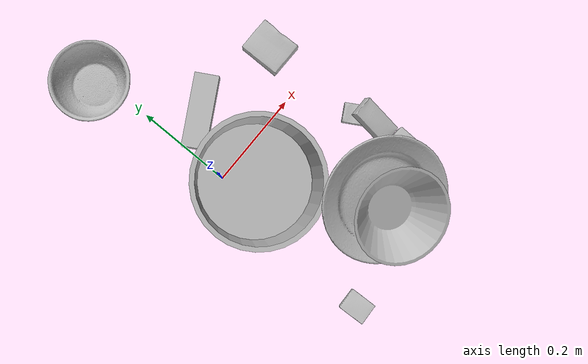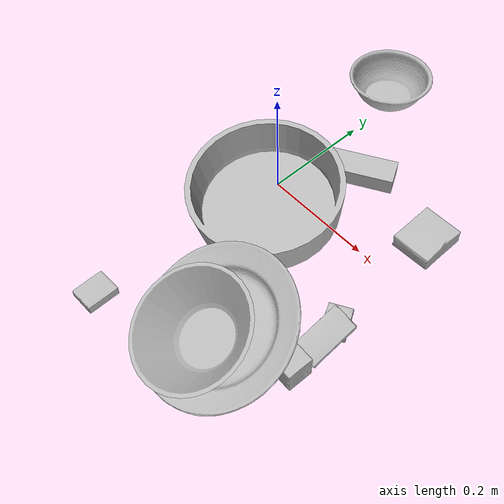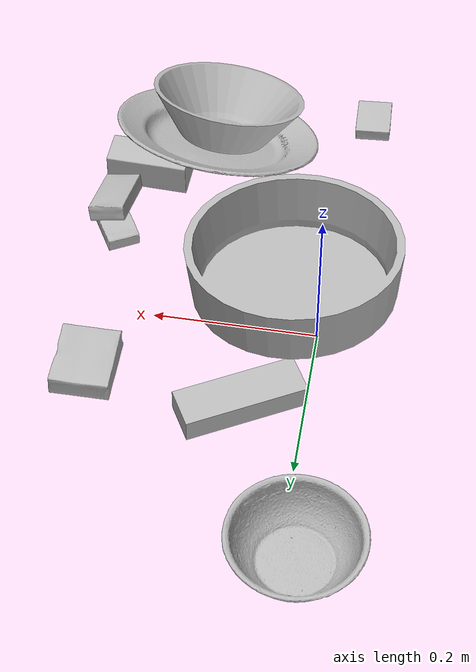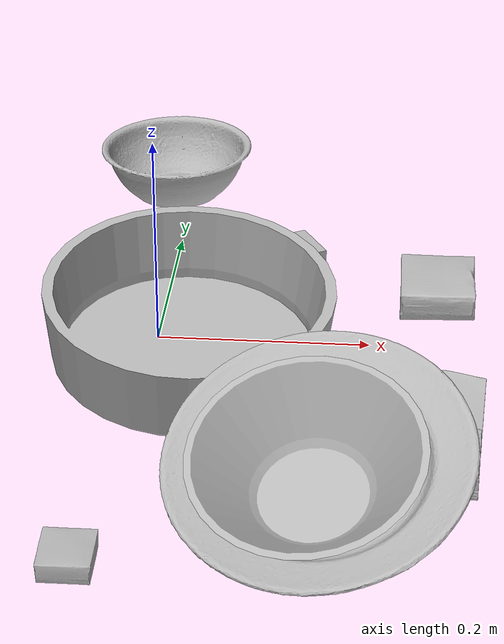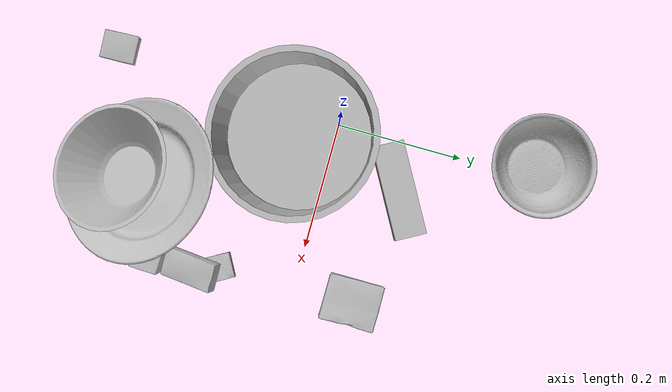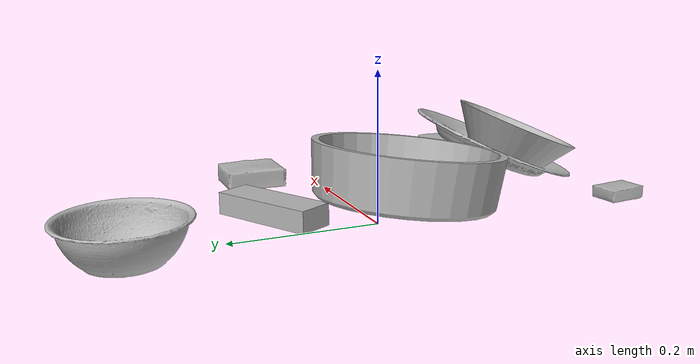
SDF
<sdf version="1.4">
  <world name="default">
    <light name="light1" type="point">
      <pose>0 0 1 0 0 0</pose>
      <diffuse>3 3 3 1</diffuse>
      <specular>3 3 3 1</specular>
    </light>
    <light name="light2" type="point">
      <pose>0 0.5 2 0 0 0</pose>
      <diffuse>1 1 1 1</diffuse>
      <specular>1 1 1 1</specular>
    </light>
    <light name="light3" type="point">
      <pose>0 0.5 2 0 0 0</pose>
      <diffuse>3 3 3 1</diffuse>
      <specular>3 3 3 1</specular>
    </light>
    <scene>
      <ambient>0.7 0.7 0.7</ambient>
    </scene>
    <model name="box1">
      <link name="link_box1">
        <collision name="default">
          <geometry>
            <mesh>
              <uri>model://jenga/collision_meshes/collision.obj</uri>
              <scale>1.0 1.0 1.0</scale>
            </mesh>
          </geometry>
          <surface>
            <friction>
              <ode>
                <mu>0.5</mu>
                <mu2>0.5</mu2>
              </ode>
            </friction>
          <contact>
        <ode>
            <max_vel>0</max_vel>
            <min_depth>0.0001</min_depth>
            <kp>1e8</kp>
        </ode>
    </contact></surface>
        </collision>
        <visual name="default">
          <geometry>
            <mesh>
              <uri>model://jenga/visual_meshes/visual.dae</uri>
              <scale>1.0 1.0 1.0</scale>
            </mesh>
          </geometry>
        </visual>
        <inertial>
          <mass>0.22956150770187378</mass>
          <pose>-2.502855807051674e-07 -0.00010250010382151231 -4.0923401684267446e-05 0.0 -7.34215461761844e-07 0.0</pose>
          <inertia>
            <ixx>6.3525236e-05</ixx>
            <iyy>0.00043044525</iyy>
            <izz>0.0004595369</izz>
            <ixy>0</ixy>
            <ixz>0</ixz>
            <iyz>0</iyz>
          </inertia>
        </inertial>
      </link>
      <pose>0.0745820701122284 0.1177791878581047 0.015005835331976414 -0.0001307654430667864 1.6838732399532224e-05 -2.630546622650337</pose>
    </model>
    <model name="box11">
      <link name="link_box11">
        <collision name="default">
          <geometry>
            <mesh>
              <uri>model://gelatin_box/collision_meshes/collision.obj</uri>
              <scale>1.0 1.0 1.0</scale>
            </mesh>
          </geometry>
          <surface>
            <friction>
              <ode>
                <mu>0.5</mu>
                <mu2>0.5</mu2>
              </ode>
            </friction>
          <contact>
        <ode>
            <max_vel>0</max_vel>
            <min_depth>0.0001</min_depth>
            <kp>1e8</kp>
        </ode>
    </contact></surface>
        </collision>
        <visual name="default">
          <geometry>
            <mesh>
              <uri>model://gelatin_box/visual_meshes/visual.dae</uri>
              <scale>1.0 1.0 1.0</scale>
            </mesh>
          </geometry>
        </visual>
        <inertial>
          <mass>0.23979201912879944</mass>
          <pose>0.00043196187471039593 0.00011156872642459348 -0.0003640321083366871 -0.0010503717361155602 -0.00475581776093882 0.016440559470502904</pose>
          <inertia>
            <ixx>0.00016927361</ixx>
            <iyy>0.000120911245</iyy>
            <izz>0.00025767216</izz>
            <ixy>0</ixy>
            <ixz>0</ixz>
            <iyz>0</iyz>
          </inertia>
        </inertial>
      </link>
      <pose>0.2631273567676544 0.09323978424072266 0.015168316662311554 0.005597430642388966 -0.007304511629027091 -0.007219576423939017</pose>
    </model>
    <model name="box2">
      <link name="link_box2">
        <collision name="default">
          <geometry>
            <mesh>
              <uri>model://wood_block/collision_meshes/collision.obj</uri>
              <scale>0.5 0.5 0.5</scale>
            </mesh>
          </geometry>
          <surface>
            <friction>
              <ode>
                <mu>0.5</mu>
                <mu2>0.5</mu2>
              </ode>
            </friction>
          <contact>
        <ode>
            <max_vel>0</max_vel>
            <min_depth>0.0001</min_depth>
            <kp>1e8</kp>
        </ode>
    </contact></surface>
        </collision>
        <visual name="default">
          <geometry>
            <mesh>
              <uri>model://wood_block/visual_meshes/visual.dae</uri>
              <scale>0.5 0.5 0.5</scale>
            </mesh>
          </geometry>
        </visual>
        <inertial>
          <mass>0.1620619148015976</mass>
          <pose>-2.9066577553749084e-06 -0.000285404734313488 0.00013204291462898254 -0.05221116986778199 -0.0051926948812571205 -0.006861377876233232</pose>
          <inertia>
            <ixx>5.421584e-05</ixx>
            <iyy>0.00017126785</iyy>
            <izz>0.00017062723</izz>
            <ixy>0</ixy>
            <ixz>0</ixz>
            <iyz>0</iyz>
          </inertia>
        </inertial>
      </link>
      <pose>0.24795469641685486 -0.22837552428245544 0.02262939140200615 -0.005236190468380212 0.005723901320035021 -0.04126985712675197</pose>
    </model>
    <model name="box21">
      <link name="link_box21">
        <collision name="default">
          <geometry>
            <mesh>
              <uri>model://cracker_box/collision_meshes/collision.obj</uri>
              <scale>0.25 0.25 0.25</scale>
            </mesh>
          </geometry>
          <surface>
            <friction>
              <ode>
                <mu>0.5</mu>
                <mu2>0.5</mu2>
              </ode>
            </friction>
          <contact>
        <ode>
            <max_vel>0</max_vel>
            <min_depth>0.0001</min_depth>
            <kp>1e8</kp>
        </ode>
    </contact></surface>
        </collision>
        <visual name="default">
          <geometry>
            <mesh>
              <uri>model://cracker_box/visual_meshes/visual.dae</uri>
              <scale>0.25 0.25 0.25</scale>
            </mesh>
          </geometry>
        </visual>
        <inertial>
          <mass>0.053346797823905945</mass>
          <pose>0.0002366035187151283 6.358561950037256e-05 -0.00042573839891701937 -0.0003162075101960104 -0.011106487737771283 0.002546795233856971</pose>
          <inertia>
            <ixx>8.4806525e-06</ixx>
            <iyy>1.40032225e-05</iyy>
            <izz>1.9983887e-05</izz>
            <ixy>0</ixy>
            <ixz>0</ixz>
            <iyz>0</iyz>
          </inertia>
        </inertial>
      </link>
      <pose>0.2696530818939209 -0.12571023404598236 0.009140278212726116 0.0002788081734076631 -2.5791427728062852e-05 -1.0580006716233954</pose>
    </model>
    <model name="box3">
      <link name="link_box3">
        <collision name="default">
          <geometry>
            <mesh>
              <uri>model://pudding_box/collision_meshes/collision.obj</uri>
              <scale>0.5 0.5 0.5</scale>
            </mesh>
          </geometry>
          <surface>
            <friction>
              <ode>
                <mu>0.5</mu>
                <mu2>0.5</mu2>
              </ode>
            </friction>
          <contact>
        <ode>
            <max_vel>0</max_vel>
            <min_depth>0.0001</min_depth>
            <kp>1e8</kp>
        </ode>
    </contact></surface>
        </collision>
        <visual name="default">
          <geometry>
            <mesh>
              <uri>model://pudding_box/visual_meshes/visual.dae</uri>
              <scale>0.5 0.5 0.5</scale>
            </mesh>
          </geometry>
        </visual>
        <inertial>
          <mass>0.03981568291783333</mass>
          <pose>0.00024474109522998333 0.00040339428232982755 -0.00025944141088984907 0.005213101343760943 -0.0066037982384193495 0.020079821436446477</pose>
          <inertia>
            <ixx>1.1252395e-05</ixx>
            <iyy>7.5706907e-06</iyy>
            <izz>1.6617103e-05</izz>
            <ixy>0</ixy>
            <ixz>0</ixz>
            <iyz>0</iyz>
          </inertia>
        </inertial>
      </link>
      <pose>-0.025636592879891396 -0.36579930782318115 0.00986290443688631 0.02234853896024439 -0.01139170844256814 -3.1027676117671423</pose>
    </model>
    <model name="box31">
      <link name="link_box31">
        <collision name="default">
          <geometry>
            <mesh>
              <uri>model://sugar_box/collision_meshes/collision.obj</uri>
              <scale>0.5 0.5 0.5</scale>
            </mesh>
          </geometry>
          <surface>
            <friction>
              <ode>
                <mu>0.5</mu>
                <mu2>0.5</mu2>
              </ode>
            </friction>
          <contact>
        <ode>
            <max_vel>0</max_vel>
            <min_depth>0.0001</min_depth>
            <kp>1e8</kp>
        </ode>
    </contact></surface>
        </collision>
        <visual name="default">
          <geometry>
            <mesh>
              <uri>model://sugar_box/visual_meshes/visual.dae</uri>
              <scale>0.5 0.5 0.5</scale>
            </mesh>
          </geometry>
        </visual>
        <inertial>
          <mass>0.09878891706466675</mass>
          <pose>0.0005171863595023751 1.924554817378521e-05 -0.00018182402709499002 -0.0004046259508743568 0.001050663638168667 0.0026153790219137513</pose>
          <inertia>
            <ixx>2.0577656e-05</ixx>
            <iyy>6.651122e-05</iyy>
            <izz>7.9621874e-05</izz>
            <ixy>0</ixy>
            <ixz>0</ixz>
            <iyz>0</iyz>
          </inertia>
        </inertial>
      </link>
      <pose>0.27958086133003235 -0.16229769587516785 0.02519962005317211 -0.19705632067760384 0.3053687476919816 -1.635003870512579</pose>
    </model>
    <model name="plate1">
      <link name="link_plate1">
        <collision name="default">
          <geometry>
            <mesh>
              <uri>model://pan_tefal/collision_meshes/collision.obj</uri>
              <scale>1.0 1.0 1.0</scale>
            </mesh>
          </geometry>
          <surface>
            <friction>
              <ode>
                <mu>0.5</mu>
                <mu2>0.5</mu2>
              </ode>
            </friction>
          <contact>
        <ode>
            <max_vel>0</max_vel>
            <min_depth>0.0001</min_depth>
            <kp>1e8</kp>
        </ode>
    </contact></surface>
        </collision>
        <visual name="default">
          <geometry>
            <mesh>
              <uri>model://pan_tefal/visual_meshes/visual.dae</uri>
              <scale>1.0 1.0 1.0</scale>
            </mesh>
          </geometry>
        </visual>
        <inertial>
          <mass>1.1273940801620483</mass>
          <pose>-0.00018001534044742584 3.279306838521734e-05 -0.00851493701338768 0.0008190361817388816 -0.00033014848142065665 -0.3318599615030245</pose>
          <inertia>
            <ixx>0.007782347</ixx>
            <iyy>0.00783252</iyy>
            <izz>0.014325799</izz>
            <ixy>0</ixy>
            <ixz>0</ixz>
            <iyz>0</iyz>
          </inertia>
        </inertial>
      </link>
      <pose>0.03720034658908844 -0.059282369911670685 0.052259862422943115 0.07961664132003833 -0.104792813256596 1.255352360992927</pose>
    </model>
    <model name="bowl1">
      <link name="link_bowl1">
        <collision name="default">
          <geometry>
            <mesh>
              <uri>model://bowl_a/collision_meshes/collision.obj</uri>
              <scale>1.0 1.0 1.0</scale>
            </mesh>
          </geometry>
          <surface>
            <friction>
              <ode>
                <mu>0.5</mu>
                <mu2>0.5</mu2>
              </ode>
            </friction>
          <contact>
        <ode>
            <max_vel>0</max_vel>
            <min_depth>0.0001</min_depth>
            <kp>1e8</kp>
        </ode>
    </contact></surface>
        </collision>
        <visual name="default">
          <geometry>
            <mesh>
              <uri>model://bowl_a/visual_meshes/visual.dae</uri>
              <scale>1.0 1.0 1.0</scale>
            </mesh>
          </geometry>
        </visual>
        <inertial>
          <mass>0.3873887062072754</mass>
          <pose>0.00027867493918165565 4.731054286821745e-05 -0.0013765293406322598 -0.0009805472575270138 -0.0010938146264646796 -0.19122952428204854</pose>
          <inertia>
            <ixx>0.0011029133</ixx>
            <iyy>0.0011096848</iyy>
            <izz>0.001961574</izz>
            <ixy>0</ixy>
            <ixz>0</ixz>
            <iyz>0</iyz>
          </inertia>
        </inertial>
      </link>
      <pose>0.16157102584838867 -0.3029046654701233 0.05274137482047081 0.3290410290673603 0.2177578573168787 -0.8163273047400343</pose>
    </model>
    <model name="plate2">
      <link name="link_plate2">
        <collision name="default">
          <geometry>
            <mesh>
              <uri>model://plate/collision_meshes/collision.obj</uri>
              <scale>1.0 1.0 1.0</scale>
            </mesh>
          </geometry>
          <surface>
            <friction>
              <ode>
                <mu>0.5</mu>
                <mu2>0.5</mu2>
              </ode>
            </friction>
          <contact>
        <ode>
            <max_vel>0</max_vel>
            <min_depth>0.0001</min_depth>
            <kp>1e8</kp>
        </ode>
    </contact></surface>
        </collision>
        <visual name="default">
          <geometry>
            <mesh>
              <uri>model://plate/visual_meshes/visual.dae</uri>
              <scale>1.0 1.0 1.0</scale>
            </mesh>
          </geometry>
        </visual>
        <inertial>
          <mass>0.13866961002349854</mass>
          <pose>-0.0006044620531611145 0.0002782586379908025 -0.0010561972158029675 0.0022187857877866432 -0.0032254843385796767 0.452609315183835</pose>
          <inertia>
            <ixx>0.0006486992</ixx>
            <iyy>0.0006424946</iyy>
            <izz>0.0012687586</izz>
            <ixy>0</ixy>
            <ixz>0</ixz>
            <iyz>0</iyz>
          </inertia>
        </inertial>
      </link>
      <pose>0.16756539046764374 -0.27139008045196533 0.04317864775657654 -0.07132008887858159 -0.38587260475817703 1.4728985472104767</pose>
    </model>
    <model name="bowl2">
      <link name="link_bowl2">
        <collision name="default">
          <geometry>
            <mesh>
              <uri>model://bowl/collision_meshes/collision.obj</uri>
              <scale>1.0 1.0 1.0</scale>
            </mesh>
          </geometry>
          <surface>
            <friction>
              <ode>
                <mu>0.5</mu>
                <mu2>0.5</mu2>
              </ode>
            </friction>
          <contact>
        <ode>
            <max_vel>0</max_vel>
            <min_depth>0.0001</min_depth>
            <kp>1e8</kp>
        </ode>
    </contact></surface>
        </collision>
        <visual name="default">
          <geometry>
            <mesh>
              <uri>model://bowl/visual_meshes/visual.dae</uri>
              <scale>1.0 1.0 1.0</scale>
            </mesh>
          </geometry>
        </visual>
        <inertial>
          <mass>0.04854629561305046</mass>
          <pose>0.00020445325935725123 -0.0010302069131284952 -0.0008042645058594644 -0.015764106240563104 0.014546770392749554 0.7140394241749954</pose>
          <inertia>
            <ixx>0.00011151466</ixx>
            <iyy>0.00010902299</iyy>
            <izz>0.00018760598</izz>
            <ixy>0</ixy>
            <ixz>0</ixz>
            <iyz>0</iyz>
          </inertia>
        </inertial>
      </link>
      <pose>-0.01924496702849865 0.31909167766571045 0.027779998257756233 5.30678134769147e-09 1.9624880772598273e-08 1.2296453834057068</pose>
    </model>
  <physics type="ode">
      <max_contacts>50</max_contacts>
      <ode>
        <solver>
          <type>quick</type>
          <iters>75</iters>
        </solver>
        <constraints>
          <contact_max_correcting_vel>0</contact_max_correcting_vel>
          <contact_surface_layer>0</contact_surface_layer>
        </constraints>
      </ode>
    </physics></world>
</sdf>
